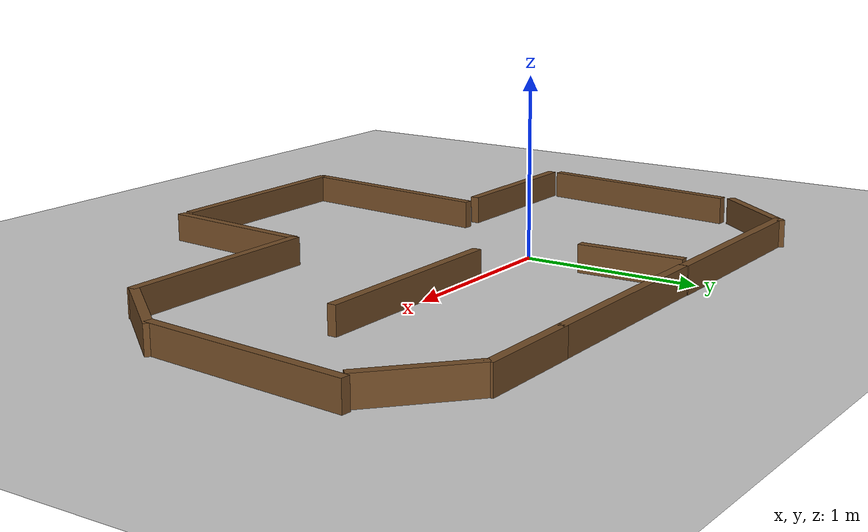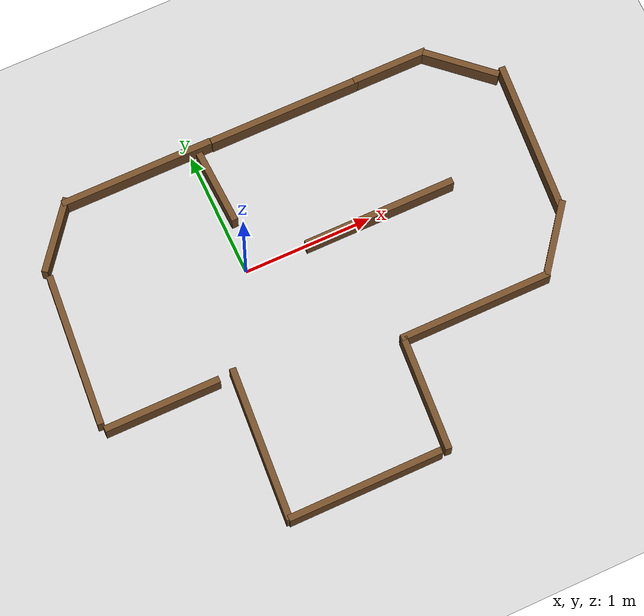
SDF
<sdf version="1.7">
 <world name="default">
  <light name="sun" type="directional">
   <pose>0 0 10 0 -0 0</pose>
   <diffuse>0.8 0.8 0.8 1</diffuse>
   <specular>0.2 0.2 0.2 1</specular>
   <attenuation>
    <range>1000</range>
    <constant>0.9</constant>
    <linear>0.01</linear>
    <quadratic>0.001</quadratic>
   </attenuation>
   <direction>-0.5 0.1 -0.9</direction>
   <spot><inner_angle>0</inner_angle><outer_angle>0</outer_angle><falloff>0</falloff></spot>
  </light>
  <model name="ground_plane">
   <static>1</static>
   <link name="link">
    <collision name="collision">
     <geometry><plane><normal>0 0 1</normal><size>100 100</size></plane></geometry>
     <surface>
      <contact><collide_bitmask>65535</collide_bitmask></contact>
      <friction><ode><mu>100</mu><mu2>50</mu2></ode></friction>
     </surface>
    </collision>
    <visual name="visual">
     <cast_shadows>0</cast_shadows>
     <geometry><plane><normal>0 0 1</normal><size>100 100</size></plane></geometry>
     <material>
      <script><uri>file://media/materials/scripts/gazebo.material</uri><name>Gazebo/Grey</name></script>
     </material>
    </visual>
   </link>
  </model>
  <gravity>0 0 -9.8</gravity>
  <magnetic_field>6e-06 2.3e-05 -4.2e-05</magnetic_field>
  <atmosphere type="adiabatic"/>
  <physics type="ode">
   <max_step_size>0.001</max_step_size>
   <real_time_factor>1</real_time_factor>
   <real_time_update_rate>1000</real_time_update_rate>
  </physics>
  <scene><ambient>0.4 0.4 0.4 1</ambient><background>0.7 0.7 0.7 1</background><shadows>1</shadows></scene>
  <audio><device>default</device></audio>
  <spherical_coordinates>
   <surface_model>EARTH_WGS84</surface_model>
   <latitude_deg>0</latitude_deg>
   <longitude_deg>0</longitude_deg>
   <elevation>0</elevation>
   <heading_deg>0</heading_deg>
  </spherical_coordinates>
  <model name="wall120cm">
   <static>1</static>
   <link name="link">
    <collision name="collision"><geometry><box><size>1.2 0.05 1.3</size></box></geometry></collision>
    <visual name="visual">
     <geometry><box><size>1.2 0.05 0.3</size></box></geometry>
     <material>
      <ambient>0.45 0.3 0.15 1</ambient>
      <diffuse>0.45 0.3 0.15 1</diffuse>
      <specular>0.05 0.05 0.05 1</specular>
     </material>
    </visual>
   </link>
   <pose>-0.432389 1.01201 0 0 -0 0</pose>
  </model>
  <model name="wall120cm_0">
   <static>1</static>
   <link name="link">
    <collision name="collision"><geometry><box><size>1.2 0.05 1.3</size></box></geometry></collision>
    <visual name="visual">
     <geometry><box><size>1.2 0.05 0.3</size></box></geometry>
     <material>
      <ambient>0.45 0.3 0.15 1</ambient>
      <diffuse>0.45 0.3 0.15 1</diffuse>
      <specular>0.05 0.05 0.05 1</specular>
     </material>
    </visual>
   </link>
   <pose>0.769659 1.00764 0 0 -0 0</pose>
  </model>
  <model name="wall60cm">
   <static>1</static>
   <pose>-1.17233 0.806735 0 0 -0 0.906811</pose>
   <link name="link">
    <collision name="collision"><geometry><box><size>0.6 0.05 1.3</size></box></geometry></collision>
    <visual name="visual">
     <geometry><box><size>0.6 0.05 0.3</size></box></geometry>
     <material>
      <ambient>0.45 0.3 0.15 1</ambient>
      <diffuse>0.45 0.3 0.15 1</diffuse>
      <specular>0.05 0.05 0.05 1</specular>
     </material>
    </visual>
   </link>
  </model>
  <model name="wall120cm_1">
   <static>1</static>
   <link name="link">
    <collision name="collision"><geometry><box><size>1.2 0.05 1.3</size></box></geometry></collision>
    <visual name="visual">
     <geometry><box><size>1.2 0.05 0.3</size></box></geometry>
     <material>
      <ambient>0.45 0.3 0.15 1</ambient>
      <diffuse>0.45 0.3 0.15 1</diffuse>
      <specular>0.05 0.05 0.05 1</specular>
     </material>
    </visual>
   </link>
   <pose>-1.39042 -0.072864 0 0 0 -1.65937</pose>
  </model>
  <model name="wall90cm">
   <static>1</static>
   <pose>-0.984895 -0.716684 0 0 -0 0</pose>
   <link name="link">
    <collision name="collision"><geometry><box><size>0.9 0.05 1.3</size></box></geometry></collision>
    <visual name="visual">
     <geometry><box><size>0.9 0.05 0.3</size></box></geometry>
     <material>
      <ambient>0.45 0.3 0.15 1</ambient>
      <diffuse>0.45 0.3 0.15 1</diffuse>
      <specular>0.05 0.05 0.05 1</specular>
     </material>
    </visual>
   </link>
  </model>
  <model name="wall120cm_2">
   <static>1</static>
   <link name="link">
    <collision name="collision"><geometry><box><size>1.2 0.05 1.3</size></box></geometry></collision>
    <visual name="visual">
     <geometry><box><size>1.2 0.05 0.3</size></box></geometry>
     <material>
      <ambient>0.45 0.3 0.15 1</ambient>
      <diffuse>0.45 0.3 0.15 1</diffuse>
      <specular>0.05 0.05 0.05 1</specular>
     </material>
    </visual>
   </link>
   <pose>-0.463748 -1.28102 0 0 0 -1.65</pose>
  </model>
  <model name="wall60cm_0">
   <static>1</static>
   <pose>0.062071 0.657902 0 0 0 -1.53396</pose>
   <link name="link">
    <collision name="collision"><geometry><box><size>0.6 0.05 1.3</size></box></geometry></collision>
    <visual name="visual">
     <geometry><box><size>0.6 0.05 0.3</size></box></geometry>
     <material>
      <ambient>0.45 0.3 0.15 1</ambient>
      <diffuse>0.45 0.3 0.15 1</diffuse>
      <specular>0.05 0.05 0.05 1</specular>
     </material>
    </visual>
   </link>
  </model>
  <model name="wall120cm_3">
   <static>1</static>
   <link name="link">
    <collision name="collision"><geometry><box><size>1.2 0.05 1.3</size></box></geometry></collision>
    <visual name="visual">
     <geometry><box><size>1.2 0.05 0.3</size></box></geometry>
     <material>
      <ambient>0.45 0.3 0.15 1</ambient>
      <diffuse>0.45 0.3 0.15 1</diffuse>
      <specular>0.05 0.05 0.05 1</specular>
     </material>
    </visual>
   </link>
   <pose>0.083926 -1.86669 0 0 -0 0</pose>
  </model>
  <model name="wall90cm_0">
   <static>1</static>
   <pose>0.769803 -1.43422 0 0 0 -1.65</pose>
   <link name="link">
    <collision name="collision"><geometry><box><size>0.9 0.05 1.3</size></box></geometry></collision>
    <visual name="visual">
     <geometry><box><size>0.9 0.05 0.3</size></box></geometry>
     <material>
      <ambient>0.45 0.3 0.15 1</ambient>
      <diffuse>0.45 0.3 0.15 1</diffuse>
      <specular>0.05 0.05 0.05 1</specular>
     </material>
    </visual>
   </link>
  </model>
  <model name="wall120cm_4">
   <static>1</static>
   <link name="link">
    <collision name="collision"><geometry><box><size>1.2 0.05 1.3</size></box></geometry></collision>
    <visual name="visual">
     <geometry><box><size>1.2 0.05 0.3</size></box></geometry>
     <material>
      <ambient>0.45 0.3 0.15 1</ambient>
      <diffuse>0.45 0.3 0.15 1</diffuse>
      <specular>0.05 0.05 0.05 1</specular>
     </material>
    </visual>
   </link>
   <pose>1.38676 -0.987712 0 0 -0 0</pose>
  </model>
  <model name="wall60cm_clone">
   <static>1</static>
   <pose>2.14973 -0.754419 0 0 -0 0.906811</pose>
   <link name="link">
    <collision name="collision"><geometry><box><size>0.6 0.05 1.3</size></box></geometry></collision>
    <visual name="visual">
     <geometry><box><size>0.6 0.05 0.3</size></box></geometry>
     <material>
      <ambient>0.45 0.3 0.15 1</ambient>
      <diffuse>0.45 0.3 0.15 1</diffuse>
      <specular>0.05 0.05 0.05 1</specular>
     </material>
    </visual>
   </link>
  </model>
  <model name="wall120cm_1_clone">
   <static>1</static>
   <link name="link">
    <collision name="collision"><geometry><box><size>1.2 0.05 1.3</size></box></geometry></collision>
    <visual name="visual">
     <geometry><box><size>1.2 0.05 0.3</size></box></geometry>
     <material>
      <ambient>0.45 0.3 0.15 1</ambient>
      <diffuse>0.45 0.3 0.15 1</diffuse>
      <specular>0.05 0.05 0.05 1</specular>
     </material>
    </visual>
   </link>
   <pose>2.35574 0.043747 0 0 0 -1.65937</pose>
  </model>
  <model name="wall60cm_1">
   <static>1</static>
   <pose>1.6454 1.00912 0 0 -0 0</pose>
   <link name="link">
    <collision name="collision"><geometry><box><size>0.6 0.05 1.3</size></box></geometry></collision>
    <visual name="visual">
     <geometry><box><size>0.6 0.05 0.3</size></box></geometry>
     <material>
      <ambient>0.45 0.3 0.15 1</ambient>
      <diffuse>0.45 0.3 0.15 1</diffuse>
      <specular>0.05 0.05 0.05 1</specular>
     </material>
    </visual>
   </link>
  </model>
  <model name="wall60cm_clone_0">
   <static>1</static>
   <pose>2.14379 0.802047 0 0 0 -0.74391</pose>
   <link name="link">
    <collision name="collision"><geometry><box><size>0.6 0.05 1.3</size></box></geometry></collision>
    <visual name="visual">
     <geometry><box><size>0.6 0.05 0.3</size></box></geometry>
     <material>
      <ambient>0.45 0.3 0.15 1</ambient>
      <diffuse>0.45 0.3 0.15 1</diffuse>
      <specular>0.05 0.05 0.05 1</specular>
     </material>
    </visual>
   </link>
  </model>
  <model name="wall120cm_0_clone">
   <static>1</static>
   <link name="link">
    <collision name="collision"><geometry><box><size>1.2 0.05 1.3</size></box></geometry></collision>
    <visual name="visual">
     <geometry><box><size>1.2 0.05 0.3</size></box></geometry>
     <material>
      <ambient>0.45 0.3 0.15 1</ambient>
      <diffuse>0.45 0.3 0.15 1</diffuse>
      <specular>0.05 0.05 0.05 1</specular>
     </material>
    </visual>
   </link>
   <pose>1.06759 -0.031013 0 0 -0 0</pose>
  </model>
 </world>
</sdf>
